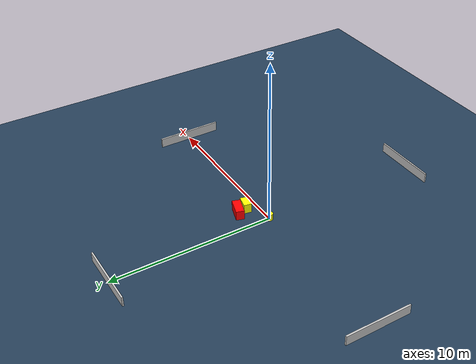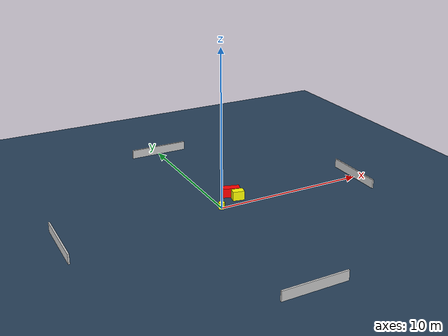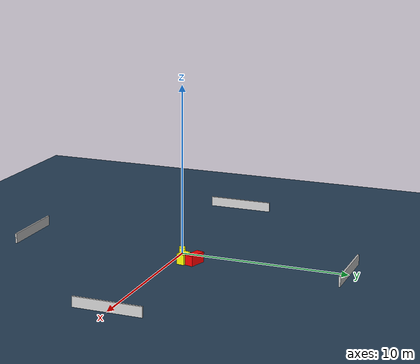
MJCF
<?xml version="1.0" ?>
<mujoco model="generated_environment">
  <option timestep="0.01" integrator="RK4" cone="elliptic"/>
  <default>
    <geom density="1"/>
  </default>
  <asset>
    <texture builtin="gradient" height="3072" name="skybox" rgb1="0.3 0.5 0.7" rgb2="0 0 0" type="skybox" width="512"/>
    <texture builtin="checker" height="300" name="groundplane" rgb1="0.2 0.3 0.4" rgb2="0.1 0.2 0.3" type="2d" width="300"/>
    <material name="groundplane" reflectance="0.2" texrepeat="5 5" texture="groundplane"/>
  </asset>
  <worldbody>
    <light dir="0 0 -1" directional="true" pos="0 0 1.5"/>
    <geom condim="3" friction="0.5 0.005 0.001" material="groundplane" name="floor" pos="0 0 0" size="0 0 0.05" type="plane"/>
    <body name="walls">
      <geom name="wall_1" condim="4" pos="-10.0 0.0 0.3" rgba="0.800000011920929 0.800000011920929 0.800000011920929 1.0" size="0.05 2.0 0.3" type="box"/>
      <geom name="wall_2" condim="4" pos="10.0 0.0 0.3" rgba="0.800000011920929 0.800000011920929 0.800000011920929 1.0" size="0.05 2.0 0.3" type="box"/>
      <geom name="wall_3" condim="4" pos="0.0 -10.0 0.3" rgba="0.800000011920929 0.800000011920929 0.800000011920929 1.0" size="2.0 0.05 0.3" type="box"/>
      <geom name="wall_4" condim="4" pos="0.0 10.0 0.3" rgba="0.800000011920929 0.800000011920929 0.800000011920929 1.0" size="2.0 0.05 0.3" type="box"/>
    </body>
    <body name="robot">
      <joint name="joint_x" type="slide" pos="0 0 0" axis="1 0 0"/>
      <joint name="joint_y" type="slide" pos="0 0 0" axis="0 1 0"/>
      <geom name="robot" type="cylinder" pos="0.0 0.0 0.2" size="0.2 0.2 0.0" mass="5.0" friction="1.0 0.005 0.0001" condim="4" rgba="1.0 1.0 0.0 1.0"/>
    </body>
    <body name="obstacle_1_movable">
      <geom name="obstacle_1_movable" condim="4" pos="1.5039547500476924 0.6976542657397021 0.3" euler="0 0 258.62189089806657" friction="0.0 0.005 0.001" rgba="1.0 1.0 0.0 1.0" size="0.23440626312329954 0.3718764975170741 0.3" type="box" mass="0.1"/>
      <joint type="free"/>
    </body>
    <body name="obstacle_2_static">
      <geom name="obstacle_2_static" condim="4" pos="1.3463718771717823 1.3057426182784257 0.3" euler="0 0 342.8636731596627" friction="0.0 0.005 0.001" rgba="1.0 0.0 0.0 1.0" size="0.5419346071613158 0.2490890587932702 0.3" type="box"/>
    </body>
  </worldbody>
  <actuator>
    <motor name="actuator_x" joint="joint_x" gear="1" ctrlrange="-1 1"/>
    <motor name="actuator_y" joint="joint_y" gear="1" ctrlrange="-1 1"/>
  </actuator>
</mujoco>
